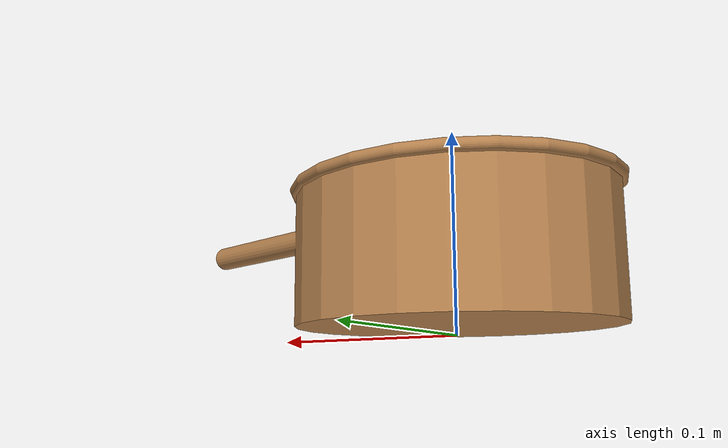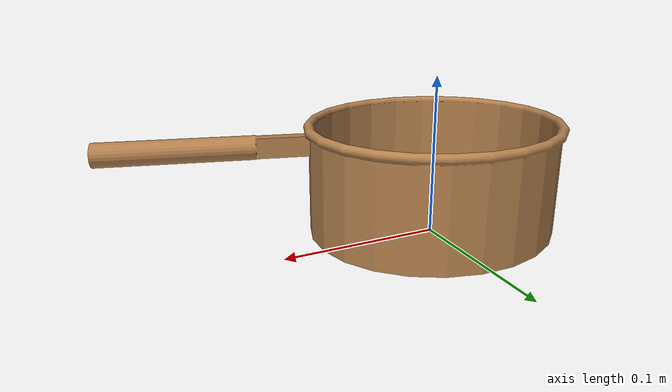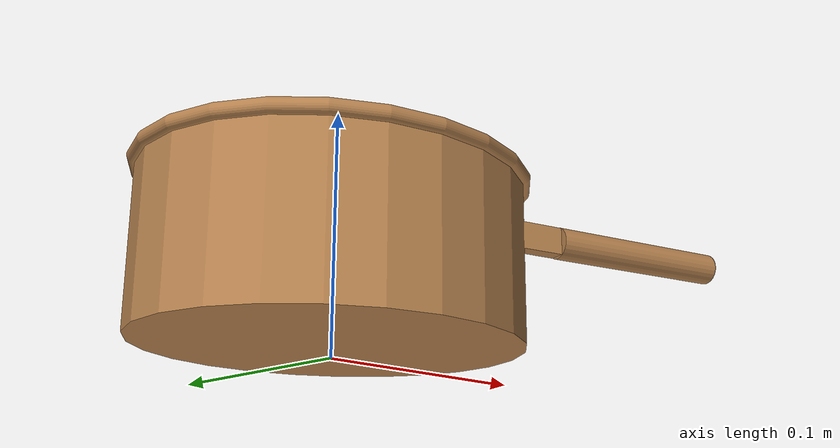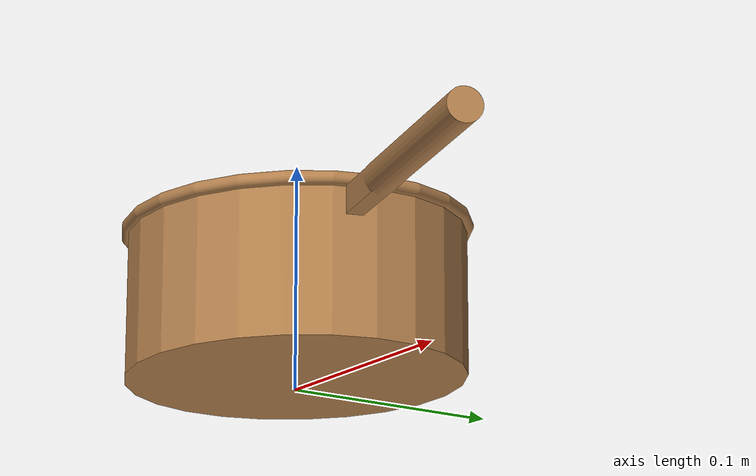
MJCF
<mujoco model="cookpot">
  <asset>
  <texture file="meshes/metal.png" name="tex-metal" type="2d" />
  <material name="wood" reflectance="0.5" texrepeat="1 1" texture="tex-metal" texuniform="false" />
  <mesh file="./cookpot.stl" name="pot" scale="0.00066 0.0006 0.0006" /></asset>
  <worldbody>
    <body>
      <body name="object">
      <geom solimp="0.998 0.998 0.001" solref="0.001 1" density="200" friction="2.05 1.4 0.15" type="mesh" mesh="pot" conaffinity="0" contype="1" group="1" material="wood" />
      <geom solimp="0.998 0.998 0.001" solref="0.001 1" density="200" friction="2.05 1.4 0.15" type="mesh" mesh="pot" pos="0.00000 0.00000 -0.00000" size="1.00066 1.00066 1.00066" group="0" rgba="0.8 0.8 0.8 0." /></body>
      <site rgba="0 0 0 0" size="0.005" pos="0 0 -0.02" name="bottom_site" />
      <site rgba="0 0 0 0" size="0.005" pos="0 0 0.02" name="top_site" />
      <site rgba="0 0 0 0" size="0.005" pos="0.02 0.02 0" name="horizontal_radius_site" />
    </body>
  </worldbody>
</mujoco>
